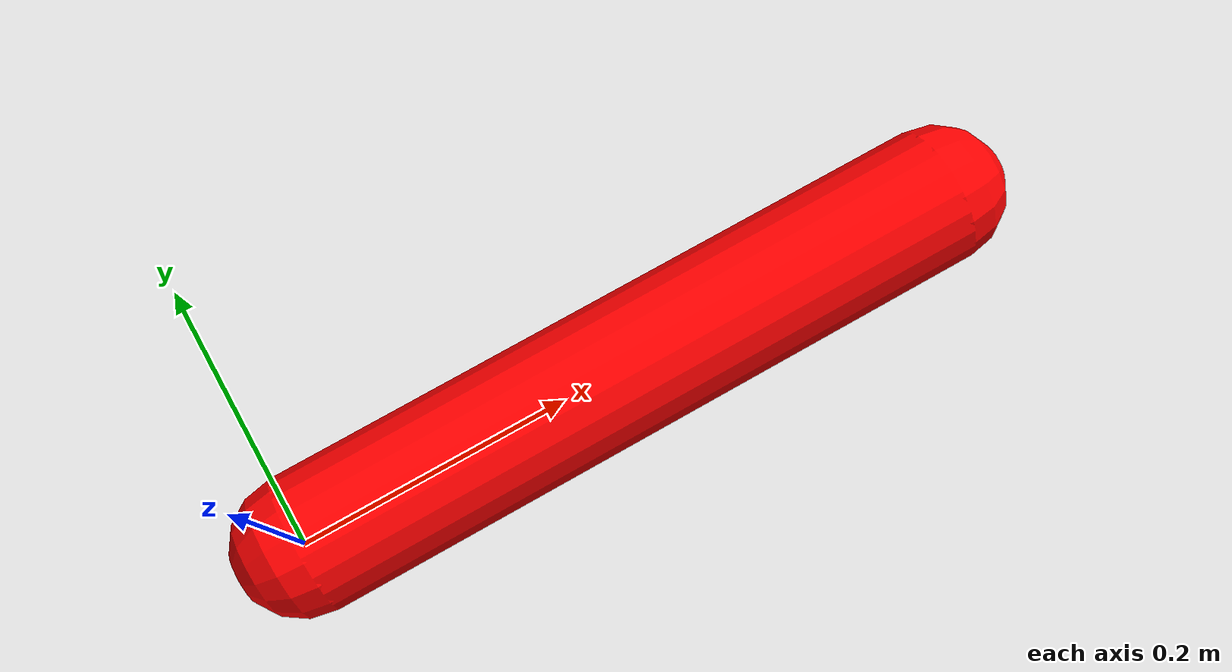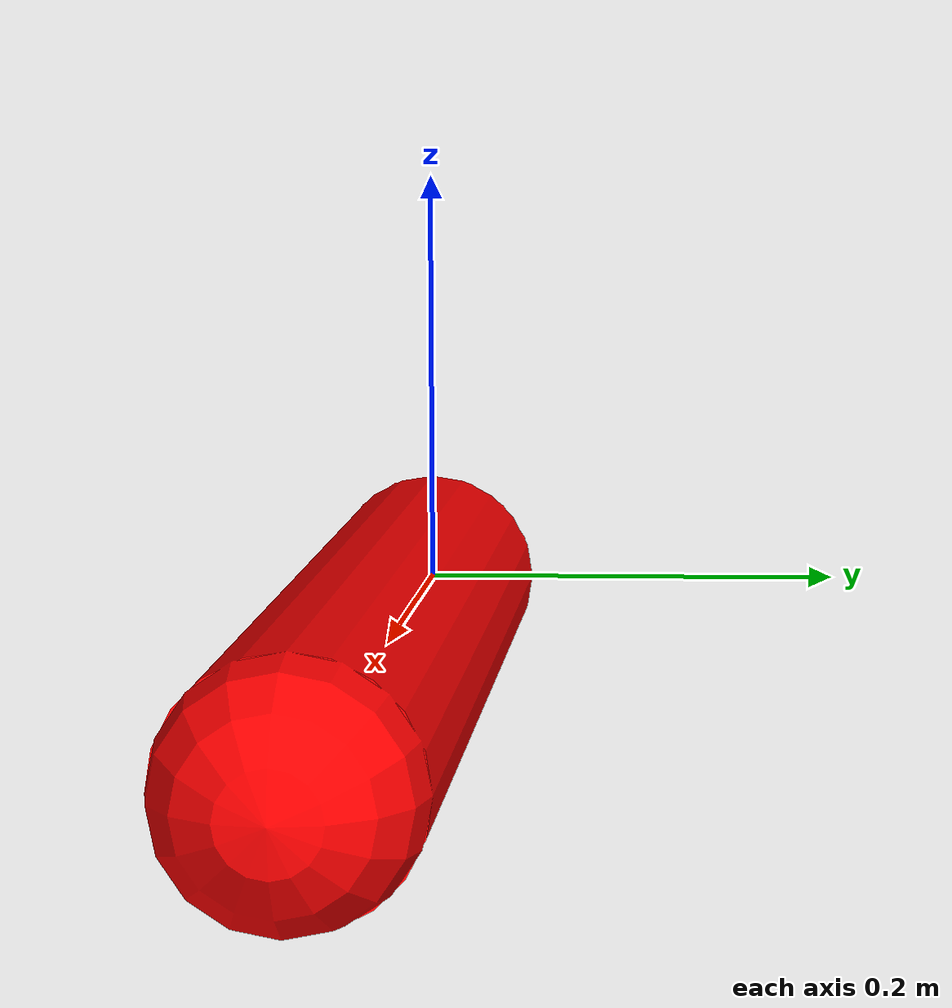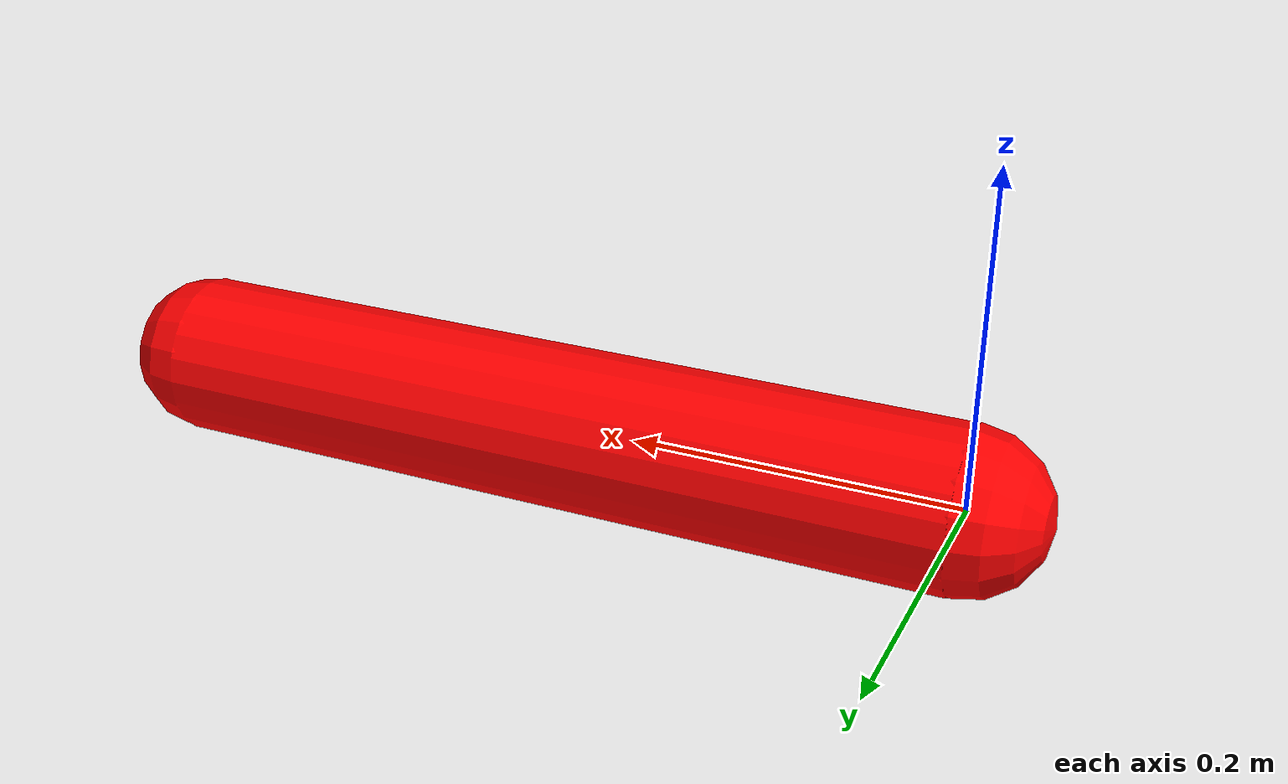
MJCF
<mujoco>
  <option gravity="0 0 -9.81" integrator="implicit"/>
  <default>
    <joint damping="0" frictionloss="0" armature="0"/>
    <geom contype="0" conaffinity="0"/>
  </default>
  <worldbody>
    <body name="link1">
      <joint name="j_rx" type="hinge" axis="1 0 0" limited="false"/>
      <joint name="j_ry" type="hinge" axis="0 1 0" limited="false"/>
      <joint name="j_rz" type="hinge" axis="0 0 1" limited="false"/>
      <geom type="capsule" size="0.05" density="4000" fromto="0 0 0 0.5 0 0" rgba="1 0 0 1"/>
    </body>
  </worldbody>
  <actuator>
    <motor joint="j_rx" gear="1"/>
    <motor joint="j_ry" gear="1"/>
    <motor joint="j_rz" gear="1"/>
  </actuator>
</mujoco>
